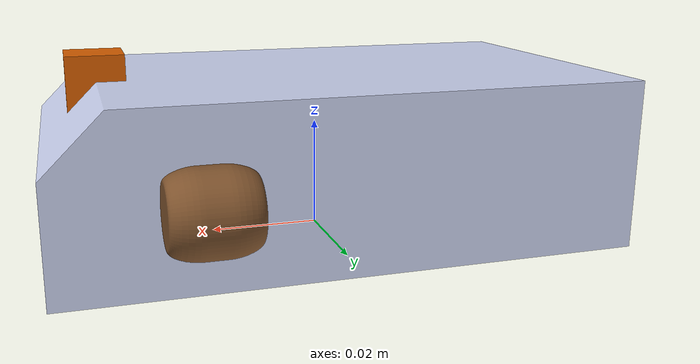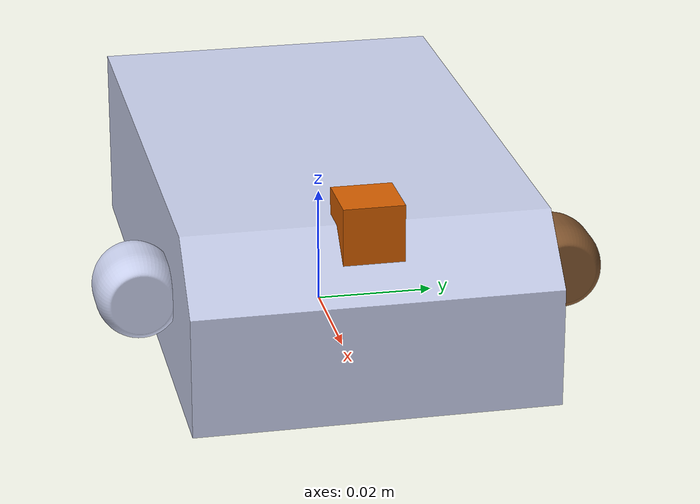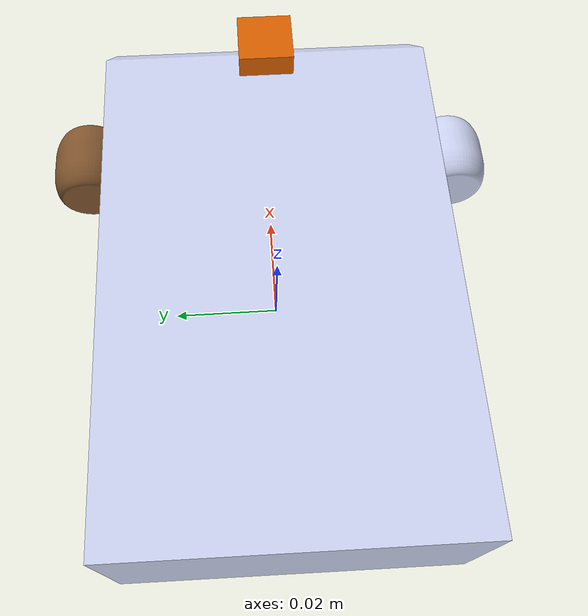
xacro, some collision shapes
<?xml version="1.0" encoding="utf-8"?>

<robot name="priv2" xmlns:xacro="http://www.ros.org/wiki/xacro">

  <xacro:include filename="$(find priv2)/src/priv2_description/urdf/priv2.gazebo" />
  <xacro:include filename="$(find priv2)/src/priv2_description/urdf/materials.xacro" />
  <xacro:include filename="$(find priv2)/src/priv2_description/urdf/macros.xacro" />

  <link name="base_footprint"/>

  <joint name="base_joint" type="fixed">
    <parent link="base_footprint"/>
    <child link="base_link"/>
    <origin xyz="0.0 0.0 0.0" rpy="0 0 0"/>
  </joint>

 <link  name="base_link">
    <inertial>
      <origin
        xyz="0.025 0 0"
        rpy="0 0 0" />
      <mass      value="1" />
      <inertia
        ixx="0.000966667"
        ixy="0"
        ixz="0"
        iyy="0.001133333"
        iyz="0"
        izz="0.000433333" />
    </inertial>
    <visual>
      <origin
        xyz="0 0 0"
        rpy="0 0 3.14" />
      <geometry>
        <mesh
          filename="package://priv2/src/priv2_description/meshes/base_link.STL" />
      </geometry>
      <material
        name="">
        <color
          rgba="0.79216 0.81961 0.93333 1" />
      </material>
    </visual>
    <collision>
      <origin
        xyz="0 0 0"
        rpy="0 0 3.14" />
      <geometry>
        <mesh
          filename="package://priv2/src/priv2_description/meshes/base_link.STL" />
      </geometry>
    </collision>
  </link>

 <link   name="wheel_l">
    <inertial>
      <origin
        xyz="0 0 0"
        rpy="0 0 0" />
      <mass
        value="0.5" />
      <inertia
        ixx="5.42E-06"
        ixy="0"
        ixz="0"
        iyy="5.42E-06"
        iyz="0"
        izz="0.00001" />
    </inertial>
    <visual>
      <origin
        xyz="0 0 0.0"
        rpy="1.57 0 0" />
      <geometry>
        <mesh
          filename="package://priv2/src/priv2_description/meshes/wheel_r.STL" />
      </geometry>
      <material
        name="brown">

      </material>
    </visual>
   <collision>
       <origin xyz="0 0 0.005" rpy="0 0 0"/>
      <geometry>
        <cylinder length="0.01" radius="0.02"/>
      </geometry>
    </collision>

  </link>

   <joint
    name="joint_wheel_r"
    type="continuous">
    <origin
      xyz="0.025 0.035 0.015"
      rpy="-1.57 0 0" />
    <parent
      link="base_link" />
    <child
      link="wheel_l" />
    <axis
      xyz="0 0 1" />

  </joint>

  <link   name="wheel_r">
    <inertial>
      <origin
        xyz="0 0 0"
        rpy="0 0 0" />
      <mass
        value="0.5" />
      <inertia
        ixx="5.42E-06"
        ixy="0"
        ixz="0"
        iyy="5.42E-06"
        iyz="0"
        izz="0.00001" />
    </inertial>
    <visual>
      <origin
        xyz="0 0 0"
        rpy="1.57 3.14 0" />
      <geometry>
        <mesh
          filename="package://priv2/src/priv2_description/meshes/wheel_l.STL" />
      </geometry>
      <material
        name="">
        <color
          rgba="0.79216 0.81961 0.93333 1" />
      </material>
    </visual>
  <collision>
       <origin xyz="0 0 -0.005" rpy="0 0 0"/>
      <geometry>
        <cylinder length="0.01" radius="0.02"/>
      </geometry>
    </collision>

  </link>

  <joint
    name="joint_wheel_l"
    type="continuous">
   <origin
      xyz="0.025 -0.035 0.015"
      rpy="-1.57 0 0" />
    <parent
      link="base_link" />
    <child
      link="wheel_r" />
    <axis
      xyz="0 0 1" />

  </joint>

  <joint
    name="Joint_wheel_b"
    type="continuous">
    <origin
      xyz="-0.025024 0 -0.001"
      rpy="-1.57 0 0" />
    <parent
      link="base_link" />
    <child
      link="wheel_b" />
    <axis
      xyz="0 0 1" />
  </joint>

  <link
    name="wheel_b">
    <inertial>
      <origin
        xyz="0 0 0"
        rpy="0 0 0" />
      <mass
        value="0.1" />
   <inertia
        ixx="4.3881E-08"
        ixy="0"
        ixz="0"
        iyy="5.0048E-08"
        iyz="0"
        izz="5.0048E-08" />
    </inertial>
    <visual>
      <origin
        xyz="0 0 0"
        rpy="0 1.57 0" />
      <geometry>
        <mesh
          filename="package://priv2/src/priv2_description/meshes/wheel_b.STL"
	  scale="0.5 0.5 0.5" />
      </geometry>
      <material
        name="">
        <color
          rgba="0.79216 0.81961 0.93333 1" />
      </material>
    </visual>
    <collision>
      <origin
        xyz="0 0 0"
        rpy="0 1.57 0" />
      <geometry>
        <mesh
          filename="package://priv2/src/priv2_description/meshes/wheel_b.STL"
	scale="0.5 0.5 0.5" />
      </geometry>
    </collision>

  </link>

 <!-- hokuyo -->
  <link name="hokuyo">
    <collision>
      <origin xyz="0 0 0" rpy="0 0 0"/>
      <geometry>
    <box size="0.01 0.01 0.01"/>
      </geometry>
    </collision>

    <visual>
      <origin xyz="0 0 0" rpy="0 0 0"/>
      <geometry>
        <mesh filename="package://priv2/src/priv2_description/meshes/hokuyo.dae" scale="0.1 0.1 0.1"/>
      </geometry>
    </visual>

    <inertial>
      <mass value="1e-5" />
      <origin xyz="0 0 0" rpy="0 0 0"/>
      <inertia ixx="1e-6" ixy="0" ixz="0" iyy="1e-6" iyz="0" izz="1e-6" />
    </inertial>
  </link>

    <joint name="hokuyo_joint" type="fixed">
    <axis xyz="0 1 0" />
    <origin xyz="0.04 0 0.0295" rpy="0 0 0"/>
    <parent link="base_link"/>
    <child link="hokuyo"/>
  </joint>

</robot>
